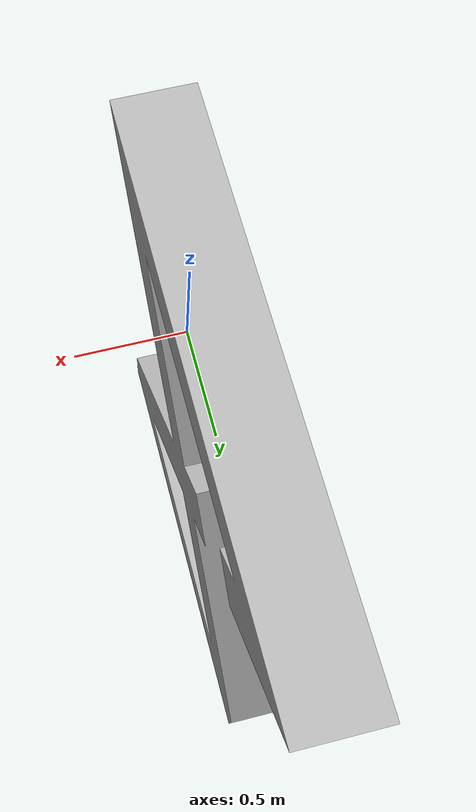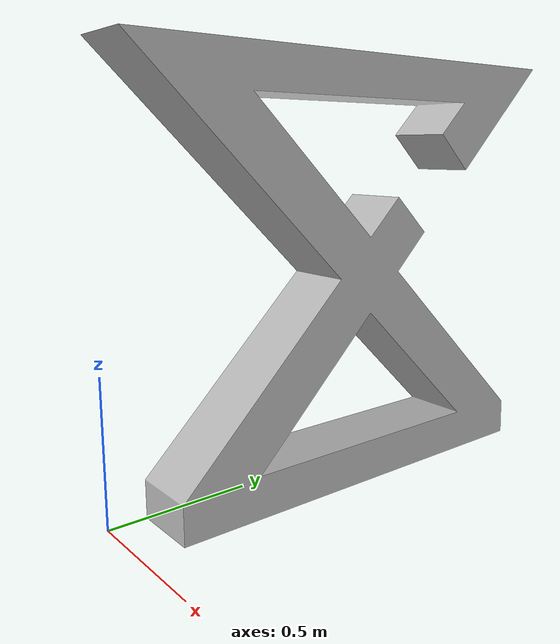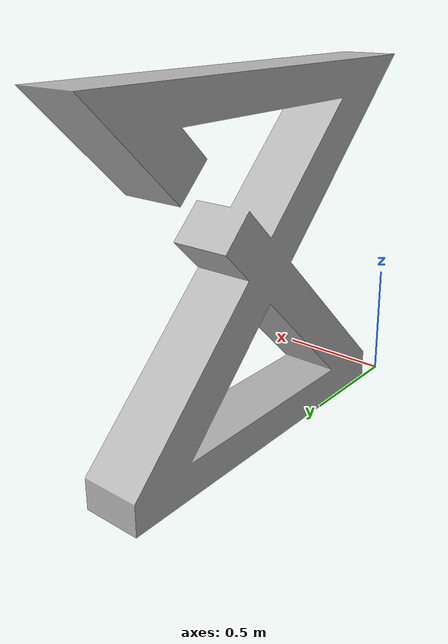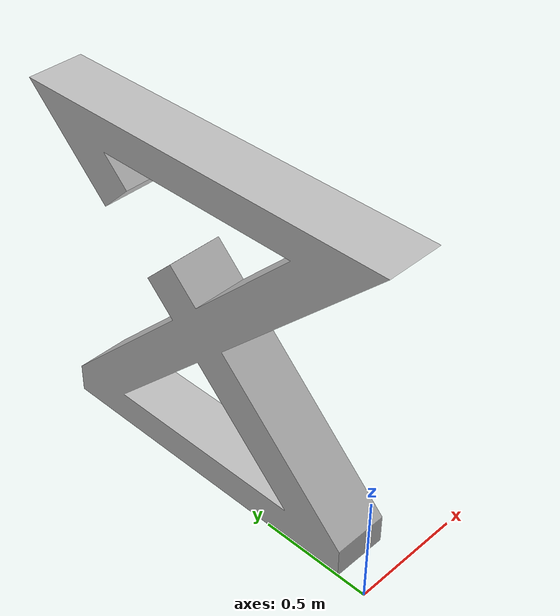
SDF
<?xml version="1.0" ?>
<sdf version="1.5">
  <model name="diagonal_no_side_cut">
    <static>true</static>
    <link name="link">
      <pose>0 0 0 0 0 0</pose>
      <inertial>
        <mass>100.0</mass>
        <inertia>
          <ixx>100.0</ixx>
          <ixy>0</ixy>
          <ixz>0</ixz>
          <iyy>100.0</iyy>
          <iyz>0</iyz>
          <izz>100.0</izz>
        </inertia>
      </inertial>

      <collision name="collision">
        <geometry>
          <mesh>
            <uri>model://diagonal_no_side_cut/meshes/diagonal_no_side_cut.dae</uri>
          </mesh>
        </geometry>
      </collision>

      <visual name="visual">
        <geometry>
          <mesh>
            <uri>model://diagonal_no_side_cut/meshes/diagonal_no_side_cut.dae</uri>
          </mesh>
        </geometry>
      </visual>

    </link>
  </model>
</sdf>
